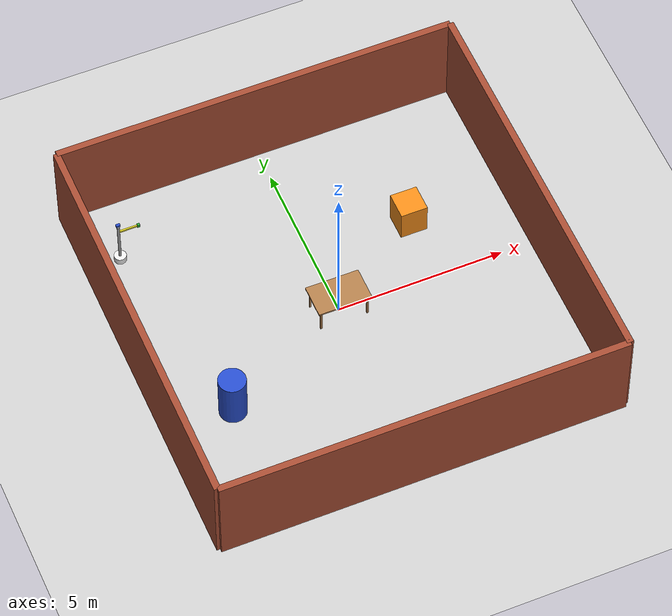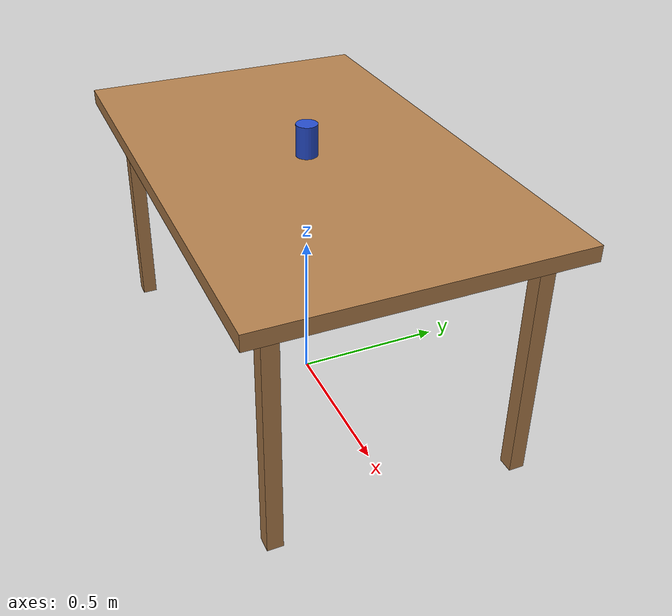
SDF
<?xml version="1.0" ?>
<sdf version="1.6">
  <world name="simple_robot_world">

    <!-- Physics -->
    <physics type="ode">
      <max_step_size>0.001</max_step_size>
      <real_time_factor>1.0</real_time_factor>
    </physics>

    <!-- Sun -->
    <light type="directional" name="sun">
      <pose>0 0 10 0 0 0</pose>
      <diffuse>0.8 0.8 0.8 1</diffuse>
      <direction>-0.5 0.1 -0.9</direction>
    </light>

    <!-- Ground -->
    <model name="ground_plane">
      <static>true</static>
      <link name="link">
        <collision name="collision">
          <geometry>
            <plane>
              <normal>0 0 1</normal>
              <size>20 20</size>
            </plane>
          </geometry>
        </collision>
        <visual name="visual">
          <geometry>
            <plane>
              <normal>0 0 1</normal>
              <size>20 20</size>
            </plane>
          </geometry>
          <material>
            <script>
              <uri>file://media/materials/scripts/gazebo.material</uri>
              <name>Gazebo/Grey</name>
            </script>
          </material>
        </visual>
      </link>
    </model>

    <!-- Walls -->
    <model name="wall_north">
      <static>true</static>
      <pose>0 6 1.5 0 0 0</pose>
      <link name="link">
        <collision name="collision">
          <geometry><box><size>12 0.2 3</size></box></geometry>
        </collision>
        <visual name="visual">
          <geometry><box><size>12 0.2 3</size></box></geometry>
          <material>
            <script>
              <uri>file://media/materials/scripts/gazebo.material</uri>
              <name>Gazebo/Bricks</name>
            </script>
          </material>
        </visual>
      </link>
    </model>

    <model name="wall_south">
      <static>true</static>
      <pose>0 -6 1.5 0 0 0</pose>
      <link name="link">
        <collision name="collision">
          <geometry><box><size>12 0.2 3</size></box></geometry>
        </collision>
        <visual name="visual">
          <geometry><box><size>12 0.2 3</size></box></geometry>
          <material>
            <script>
              <uri>file://media/materials/scripts/gazebo.material</uri>
              <name>Gazebo/Bricks</name>
            </script>
          </material>
        </visual>
      </link>
    </model>

    <model name="wall_east">
      <static>true</static>
      <pose>6 0 1.5 0 0 1.5707</pose>
      <link name="link">
        <collision name="collision">
          <geometry><box><size>12 0.2 3</size></box></geometry>
        </collision>
        <visual name="visual">
          <geometry><box><size>12 0.2 3</size></box></geometry>
          <material>
            <script>
              <uri>file://media/materials/scripts/gazebo.material</uri>
              <name>Gazebo/Bricks</name>
            </script>
          </material>
        </visual>
      </link>
    </model>

    <model name="wall_west">
      <static>true</static>
      <pose>-6 0 1.5 0 0 1.5707</pose>
      <link name="link">
        <collision name="collision">
          <geometry><box><size>12 0.2 3</size></box></geometry>
        </collision>
        <visual name="visual">
          <geometry><box><size>12 0.2 3</size></box></geometry>
          <material>
            <script>
              <uri>file://media/materials/scripts/gazebo.material</uri>
              <name>Gazebo/Bricks</name>
            </script>
          </material>
        </visual>
      </link>
    </model>

    <!-- Obstacles -->
    <model name="obstacle_1">
      <static>true</static>
      <pose>3 2 0.5 0 0 0</pose>
      <link name="link">
        <collision name="collision">
          <geometry><box><size>0.8 0.8 1</size></box></geometry>
        </collision>
        <visual name="visual">
          <geometry><box><size>0.8 0.8 1</size></box></geometry>
          <material>
            <script>
              <uri>file://media/materials/scripts/gazebo.material</uri>
              <name>Gazebo/Orange</name>
            </script>
          </material>
        </visual>
      </link>
    </model>

    <model name="obstacle_2">
      <static>true</static>
      <pose>-4 -2 0.75 0 0 0</pose>
      <link name="link">
        <collision name="collision">
          <geometry><cylinder><radius>0.4</radius><length>1.5</length></cylinder></geometry>
        </collision>
        <visual name="visual">
          <geometry><cylinder><radius>0.4</radius><length>1.5</length></cylinder></geometry>
          <material>
            <script>
              <uri>file://media/materials/scripts/gazebo.material</uri>
              <name>Gazebo/Blue</name>
            </script>
          </material>
        </visual>
      </link>
    </model>

    <!-- Table -->
    <model name="table">
      <static>true</static>
      <pose>0 0 0 0 0 0</pose>
      <link name="table_top">
        <pose>0 0 0.8 0 0 0</pose>
        <collision name="collision">
          <geometry><box><size>1.6 1.0 0.05</size></box></geometry>
        </collision>
        <visual name="visual">
          <geometry><box><size>1.6 1.0 0.05</size></box></geometry>
          <material>
            <script>
              <uri>file://media/materials/scripts/gazebo.material</uri>
              <name>Gazebo/WoodPallet</name>
            </script>
          </material>
        </visual>
      </link>
      <link name="leg1">
        <pose>-0.7 0.4 0.4 0 0 0</pose>
        <collision name="collision">
          <geometry><box><size>0.05 0.05 0.8</size></box></geometry>
        </collision>
        <visual name="visual">
          <geometry><box><size>0.05 0.05 0.8</size></box></geometry>
          <material>
            <script>
              <uri>file://media/materials/scripts/gazebo.material</uri>
              <name>Gazebo/WoodPallet</name>
            </script>
          </material>
        </visual>
      </link>
      <link name="leg2">
        <pose>0.7 0.4 0.4 0 0 0</pose>
        <collision name="collision">
          <geometry><box><size>0.05 0.05 0.8</size></box></geometry>
        </collision>
        <visual name="visual">
          <geometry><box><size>0.05 0.05 0.8</size></box></geometry>
          <material>
            <script>
              <uri>file://media/materials/scripts/gazebo.material</uri>
              <name>Gazebo/WoodPallet</name>
            </script>
          </material>
        </visual>
      </link>
      <link name="leg3">
        <pose>-0.7 -0.4 0.4 0 0 0</pose>
        <collision name="collision">
          <geometry><box><size>0.05 0.05 0.8</size></box></geometry>
        </collision>
        <visual name="visual">
          <geometry><box><size>0.05 0.05 0.8</size></box></geometry>
          <material>
            <script>
              <uri>file://media/materials/scripts/gazebo.material</uri>
              <name>Gazebo/WoodPallet</name>
            </script>
          </material>
        </visual>
      </link>
      <link name="leg4">
        <pose>0.7 -0.4 0.4 0 0 0</pose>
        <collision name="collision">
          <geometry><box><size>0.05 0.05 0.8</size></box></geometry>
        </collision>
        <visual name="visual">
          <geometry><box><size>0.05 0.05 0.8</size></box></geometry>
          <material>
            <script>
              <uri>file://media/materials/scripts/gazebo.material</uri>
              <name>Gazebo/WoodPallet</name>
            </script>
          </material>
        </visual>
      </link>
    </model>

    <!-- Glass on table -->
    <model name="glass">
      <pose>0 0 0.87 0 0 0</pose>
      <link name="link">
        <collision name="collision">
          <geometry><cylinder><radius>0.035</radius><length>0.12</length></cylinder></geometry>
        </collision>
        <visual name="visual">
          <geometry><cylinder><radius>0.035</radius><length>0.12</length></cylinder></geometry>
          <material>
            <script>
              <uri>file://media/materials/scripts/gazebo.material</uri>
              <name>Gazebo/Blue</name>
            </script>
          </material>
        </visual>
        <inertial>
          <mass>0.15</mass>
          <inertia>
            <ixx>0.0002</ixx>
            <ixy>0</ixy>
            <ixz>0</ixz>
            <iyy>0.0002</iyy>
            <iyz>0</iyz>
            <izz>0.0001</izz>
          </inertia>
        </inertial>
      </link>
    </model>

    <!-- Simple robot -->
    <model name="stretch_robot">
      <pose>-5 4 0 0 0 0</pose>

      <!-- Base -->
      <link name="base_link">
        <pose>0 0 0.1 0 0 0</pose>
        <collision name="collision">
          <geometry><cylinder><radius>0.18</radius><length>0.2</length></cylinder></geometry>
        </collision>
        <visual name="visual">
          <geometry><cylinder><radius>0.18</radius><length>0.2</length></cylinder></geometry>
          <material>
            <script>
              <uri>file://media/materials/scripts/gazebo.material</uri>
              <name>Gazebo/White</name>
            </script>
          </material>
        </visual>
        <inertial>
          <mass>30</mass>
          <inertia>
            <ixx>1</ixx>
            <ixy>0</ixy>
            <ixz>0</ixz>
            <iyy>1</iyy>
            <iyz>0</iyz>
            <izz>1</izz>
          </inertia>
        </inertial>
      </link>

      <!-- Mast -->
      <link name="mast">
        <pose>0 0 0.8 0 0 0</pose>
        <collision name="collision">
          <geometry><cylinder><radius>0.04</radius><length>1.4</length></cylinder></geometry>
        </collision>
        <visual name="visual">
          <geometry><cylinder><radius>0.04</radius><length>1.4</length></cylinder></geometry>
          <material>
            <script>
              <uri>file://media/materials/scripts/gazebo.material</uri>
              <name>Gazebo/Grey</name>
            </script>
          </material>
        </visual>
        <inertial>
          <mass>5</mass>
          <inertia>
            <ixx>0.5</ixx>
            <ixy>0</ixy>
            <ixz>0</ixz>
            <iyy>0.5</iyy>
            <iyz>0</iyz>
            <izz>0.1</izz>
          </inertia>
        </inertial>
      </link>

      <!-- Arm -->
      <link name="arm">
        <pose>0.3 0 1.3 0 0 0</pose>
        <collision name="collision">
          <geometry><box><size>0.6 0.05 0.05</size></box></geometry>
        </collision>
        <visual name="visual">
          <geometry><box><size>0.6 0.05 0.05</size></box></geometry>
          <material>
            <script>
              <uri>file://media/materials/scripts/gazebo.material</uri>
              <name>Gazebo/Yellow</name>
            </script>
          </material>
        </visual>
        <inertial>
          <mass>2</mass>
          <inertia>
            <ixx>0.1</ixx>
            <ixy>0</ixy>
            <ixz>0</ixz>
            <iyy>0.1</iyy>
            <iyz>0</iyz>
            <izz>0.1</izz>
          </inertia>
        </inertial>
      </link>

      <!-- Gripper -->
      <link name="gripper">
        <pose>0.6 0 1.3 0 0 0</pose>
        <collision name="collision">
          <geometry><box><size>0.08 0.08 0.08</size></box></geometry>
        </collision>
        <visual name="visual">
          <geometry><box><size>0.08 0.08 0.08</size></box></geometry>
          <material>
            <script>
              <uri>file://media/materials/scripts/gazebo.material</uri>
              <name>Gazebo/Green</name>
            </script>
          </material>
        </visual>
        <inertial>
          <mass>1</mass>
          <inertia>
            <ixx>0.01</ixx>
            <ixy>0</ixy>
            <ixz>0</ixz>
            <iyy>0.01</iyy>
            <iyz>0</iyz>
            <izz>0.01</izz>
          </inertia>
        </inertial>
      </link>

      <!-- Head -->
      <link name="head">
        <pose>0 0 1.6 0 0 0</pose>
        <collision name="collision">
          <geometry><box><size>0.12 0.08 0.06</size></box></geometry>
        </collision>
        <visual name="visual">
          <geometry><box><size>0.12 0.08 0.06</size></box></geometry>
          <material>
            <script>
              <uri>file://media/materials/scripts/gazebo.material</uri>
              <name>Gazebo/Blue</name>
            </script>
          </material>
        </visual>
        <inertial>
          <mass>1</mass>
          <inertia>
            <ixx>0.01</ixx>
            <ixy>0</ixy>
            <ixz>0</ixz>
            <iyy>0.01</iyy>
            <iyz>0</iyz>
            <izz>0.01</izz>
          </inertia>
        </inertial>
      </link>

      <!-- Joints -->
      <joint name="base_to_mast" type="fixed">
        <parent>base_link</parent>
        <child>mast</child>
      </joint>

      <joint name="mast_to_arm" type="fixed">
        <parent>mast</parent>
        <child>arm</child>
      </joint>

      <joint name="arm_to_gripper" type="fixed">
        <parent>arm</parent>
        <child>gripper</child>
      </joint>

      <joint name="mast_to_head" type="fixed">
        <parent>mast</parent>
        <child>head</child>
      </joint>

    </model>

  </world>
</sdf>
